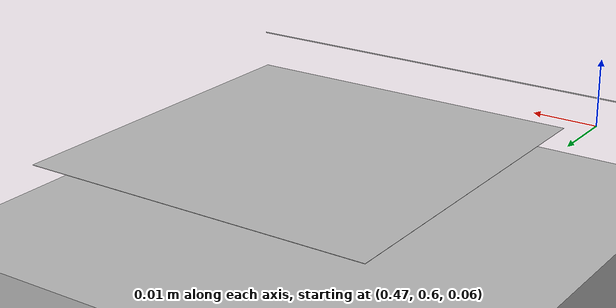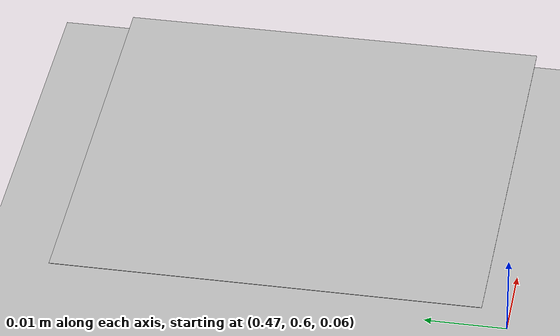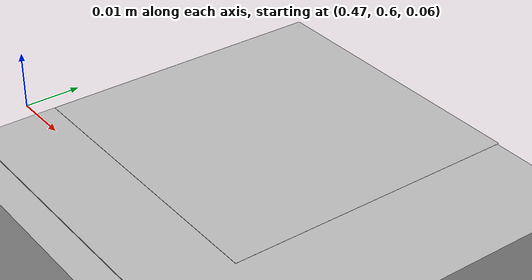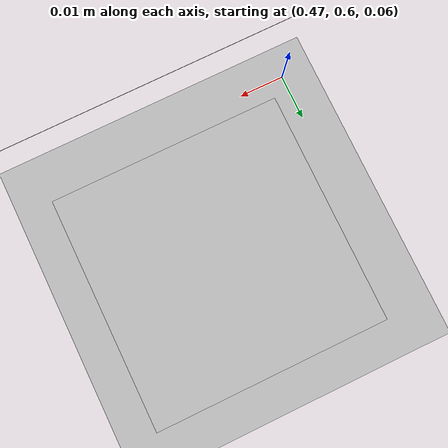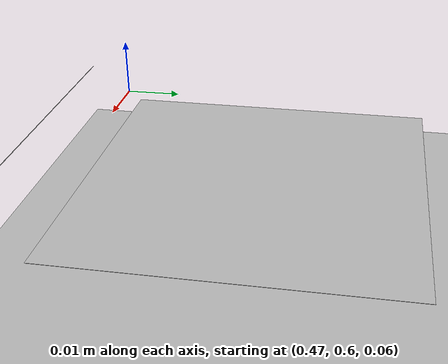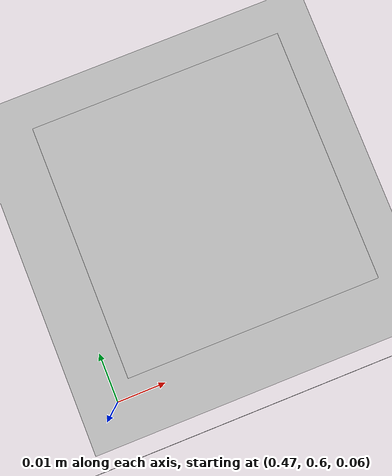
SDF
<sdf version="1.6">
 <world name="default">
  <light name="sun" type="directional">
   <pose>0 0 10 0 -0 0</pose>
   <diffuse>0.8 0.8 0.8 1</diffuse>
   <specular>0.2 0.2 0.2 1</specular>
   <attenuation>
    <range>1000</range>
    <constant>0.9</constant>
    <linear>0.01</linear>
    <quadratic>0.001</quadratic>
   </attenuation>
   <direction>-0.5 0.1 -0.9</direction>
  </light>
  <model name="ground_plane">
   <static>1</static>
   <link name="link">
    <collision name="collision">
     <geometry><plane><normal>0 0 1</normal><size>100 100</size></plane></geometry>
     <surface><friction><ode><mu>100</mu><mu2>50</mu2></ode></friction></surface>
    </collision>
    <visual name="visual">
     <cast_shadows>0</cast_shadows>
     <geometry><plane><normal>0 0 1</normal><size>100 100</size></plane></geometry>
     <material>
      <script><uri>file://media/materials/scripts/gazebo.material</uri><name>Gazebo/Grey</name></script>
     </material>
    </visual>
   </link>
  </model>
  <model name="lawn_plane">
   <static>1</static>
   <link name="link">
    <collision name="collision"><geometry><box><size>20 20 0.1</size></box></geometry></collision>
    <visual name="visual">
     <cast_shadows>0</cast_shadows>
     <geometry><box><size>20 20 0.1</size></box></geometry>
     <material>
      <script>
       <uri>model://lawn_plane/materials/scripts</uri>
       <uri>model://lawn_plane/materials/textures</uri>
       <name>vrc/lawn</name>
      </script>
     </material>
    </visual>
   </link>
  </model>
  <physics name="default_physics" default="0" type="ode">
   <ode>
    <solver>
     <type>quick</type>
     <iters>10</iters>
     <sor>1.3</sor>
     <use_dynamic_moi_rescaling>0</use_dynamic_moi_rescaling>
    </solver>
    <constraints>
     <cfm>0</cfm>
     <erp>0.2</erp>
     <contact_max_correcting_vel>100</contact_max_correcting_vel>
     <contact_surface_layer>0.001</contact_surface_layer>
    </constraints>
   </ode>
   <max_step_size>0.004</max_step_size>
   <real_time_factor>1</real_time_factor>
   <real_time_update_rate>250</real_time_update_rate>
  </physics>
  <gravity>0 0 -9.8066</gravity>
  <magnetic_field>6e-06 2.3e-05 -4.2e-05</magnetic_field>
  <atmosphere type="adiabatic"/>
  <scene><ambient>0.4 0.4 0.4 1</ambient><background>0.7 0.7 0.7 1</background><shadows>1</shadows></scene>
  <spherical_coordinates>
   <surface_model>EARTH_WGS84</surface_model>
   <latitude_deg>0</latitude_deg>
   <longitude_deg>0</longitude_deg>
   <elevation>0</elevation>
   <heading_deg>0</heading_deg>
  </spherical_coordinates>
  <model name="marker_big">
   <static>1</static>
   <pose>0.5 0.5 0.06 0 -0 0</pose>
   <link name="link">
    <collision name="collision">
     <geometry><plane><normal>0 0 1</normal><size>0.175 0.175</size></plane></geometry>
     <surface><friction><ode><mu>100</mu><mu2>50</mu2></ode></friction></surface>
    </collision>
    <visual name="visual">
     <cast_shadows>0</cast_shadows>
     <geometry><plane><normal>0 0 1</normal><size>0.175 0.175</size></plane></geometry>
     <material>
      <script>
       <uri>model://marker_big/materials/scripts</uri>
       <uri>model://marker_big/materials/textures/</uri>
       <name>marker_big/Image</name>
      </script>
     </material>
    </visual>
   </link>
  </model>
  <model name="marker_small">
   <static>1</static>
   <pose>0.5 0.63 0.06 0 -0 0</pose>
   <link name="link">
    <collision name="collision">
     <geometry><plane><normal>0 0 1</normal><size>0.053 0.053</size></plane></geometry>
     <surface><friction><ode><mu>100</mu><mu2>50</mu2></ode></friction></surface>
    </collision>
    <visual name="visual">
     <cast_shadows>0</cast_shadows>
     <geometry><plane><normal>0 0 1</normal><size>0.053 0.053</size></plane></geometry>
     <material>
      <script>
       <uri>model://marker_small/materials/scripts</uri>
       <uri>model://marker_small/materials/textures/</uri>
       <name>marker_small/Image</name>
      </script>
     </material>
    </visual>
   </link>
  </model>
 </world>
</sdf>
